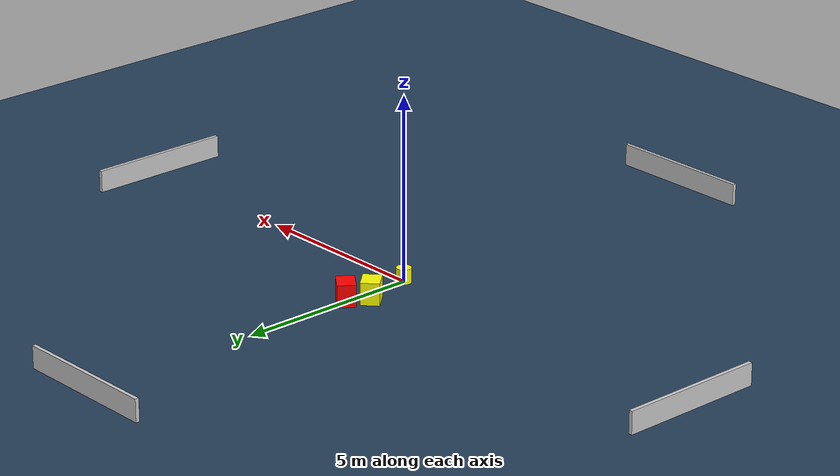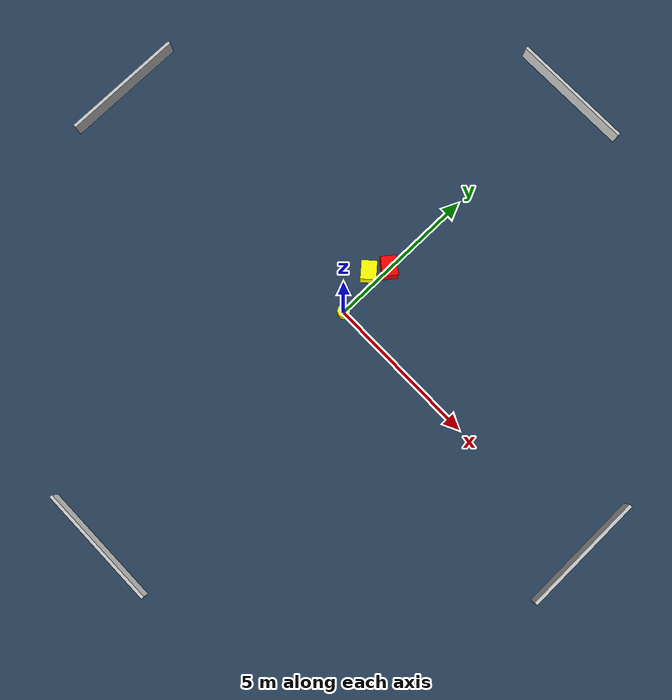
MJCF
<?xml version="1.0" ?>
<mujoco model="generated_environment">
  <option timestep="0.01" integrator="RK4" cone="elliptic"/>
  <default>
    <geom density="1"/>
  </default>
  <asset>
    <texture builtin="gradient" height="3072" name="skybox" rgb1="0.3 0.5 0.7" rgb2="0 0 0" type="skybox" width="512"/>
    <texture builtin="checker" height="300" name="groundplane" rgb1="0.2 0.3 0.4" rgb2="0.1 0.2 0.3" type="2d" width="300"/>
    <material name="groundplane" reflectance="0.2" texrepeat="5 5" texture="groundplane"/>
  </asset>
  <worldbody>
    <light dir="0 0 -1" directional="true" pos="0 0 1.5"/>
    <geom condim="3" friction="0.5 0.005 0.001" material="groundplane" name="floor" pos="0 0 0" size="0 0 0.05" type="plane"/>
    <body name="walls">
      <geom name="wall_1" condim="4" pos="-10.0 0.0 0.3" rgba="0.800000011920929 0.800000011920929 0.800000011920929 1.0" size="0.05 2.0 0.3" type="box"/>
      <geom name="wall_2" condim="4" pos="10.0 0.0 0.3" rgba="0.800000011920929 0.800000011920929 0.800000011920929 1.0" size="0.05 2.0 0.3" type="box"/>
      <geom name="wall_3" condim="4" pos="0.0 -10.0 0.3" rgba="0.800000011920929 0.800000011920929 0.800000011920929 1.0" size="2.0 0.05 0.3" type="box"/>
      <geom name="wall_4" condim="4" pos="0.0 10.0 0.3" rgba="0.800000011920929 0.800000011920929 0.800000011920929 1.0" size="2.0 0.05 0.3" type="box"/>
    </body>
    <body name="robot">
      <joint name="joint_x" type="slide" pos="0 0 0" axis="1 0 0"/>
      <joint name="joint_y" type="slide" pos="0 0 0" axis="0 1 0"/>
      <geom name="robot" type="cylinder" pos="0.0 0.0 0.2" size="0.2 0.2 0.0" mass="5.0" friction="1.0 0.005 0.0001" condim="4" rgba="1.0 1.0 0.0 1.0"/>
    </body>
    <body name="obstacle_1_movable">
      <geom name="obstacle_1_movable" condim="4" pos="-0.35530548414873614 1.4055716901927238 0.3" euler="0 0 131.71200206202099" friction="0.0 0.005 0.001" rgba="1.0 1.0 0.0 1.0" size="0.2976647936359975 0.2475649560581388 0.3" type="box" mass="0.1"/>
      <joint type="free"/>
    </body>
    <body name="obstacle_2_static">
      <geom name="obstacle_2_static" condim="4" pos="-0.011543716879708519 1.947845225398356 0.3" euler="0 0 142.8965476026269" friction="0.0 0.005 0.001" rgba="1.0 0.0 0.0 1.0" size="0.314292046451386 0.24396153635789403 0.3" type="box"/>
    </body>
  </worldbody>
  <actuator>
    <motor name="actuator_x" joint="joint_x" gear="1" ctrlrange="-1 1"/>
    <motor name="actuator_y" joint="joint_y" gear="1" ctrlrange="-1 1"/>
  </actuator>
</mujoco>
